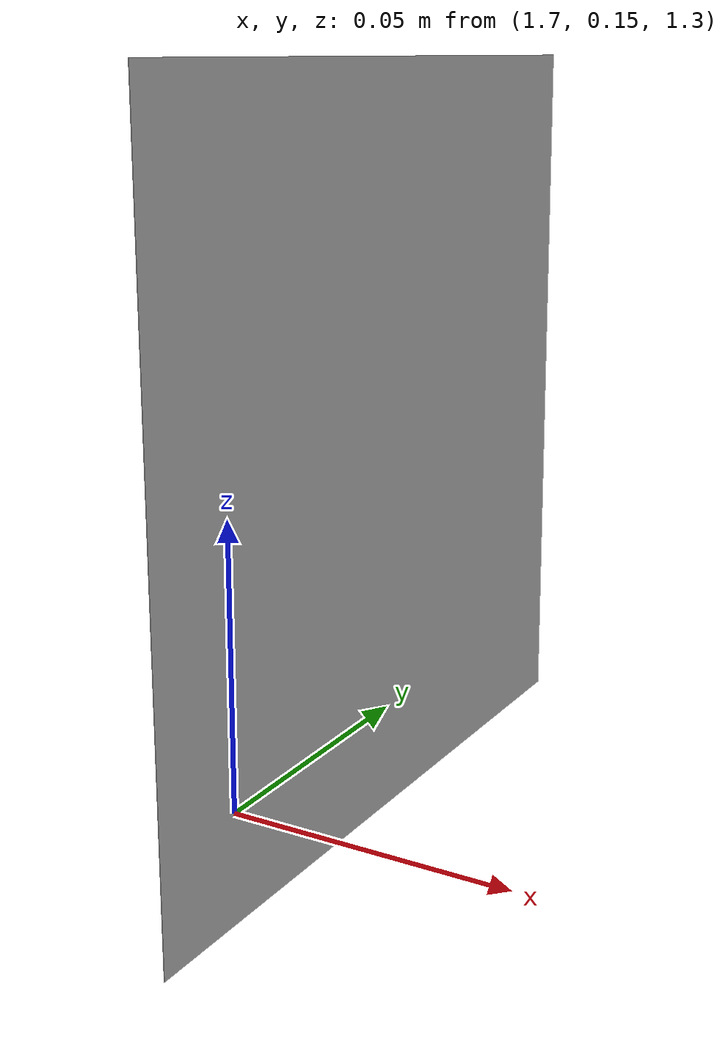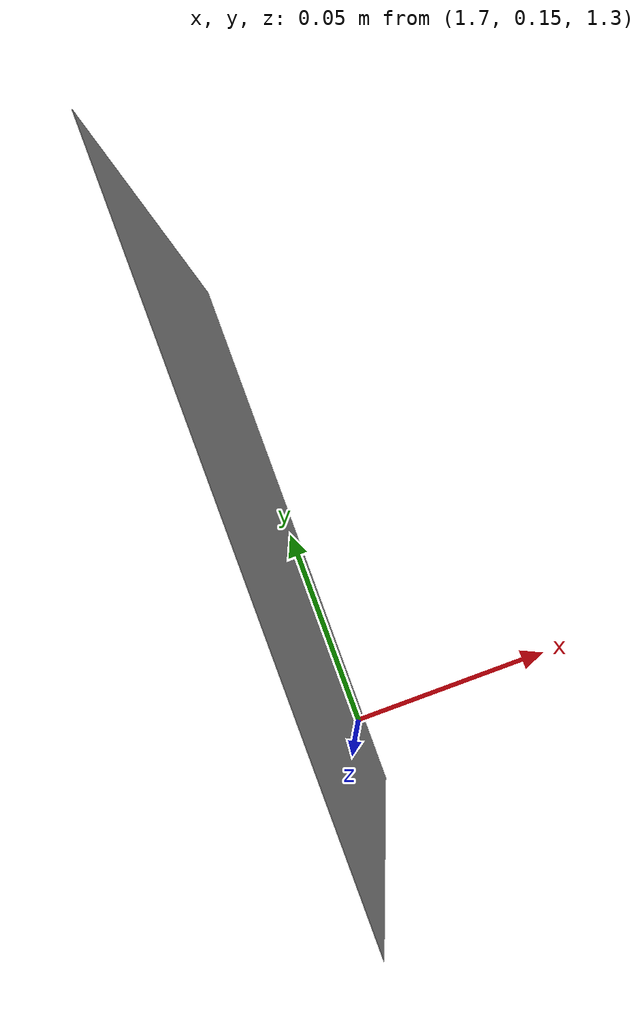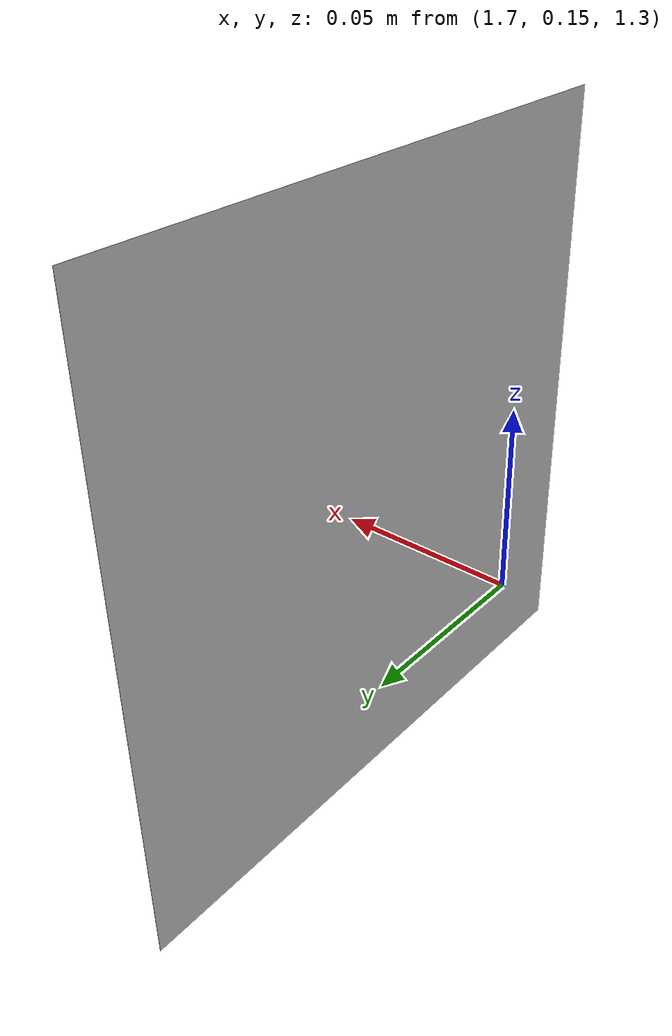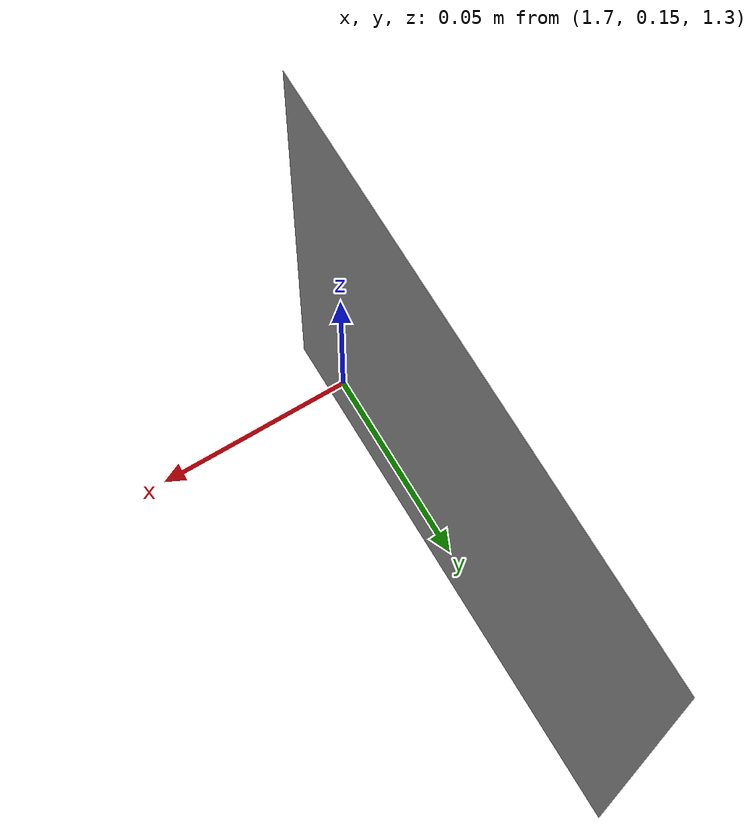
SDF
<?xml version="1.0" ?>
<sdf version="1.5">
  <world name="default">
    <!-- A global light source 123-->
    <include>
      <uri>model://sun</uri>
    </include>
    <!-- A ground plane -->
    <include>
      <uri>model://ground_plane</uri>
    </include>
    <include>
      <uri>model://aruco_marker_107</uri>
      <pose>1.7 0.2 1.35 0 0 0</pose>
    </include>

    <physics name='default_physics' default='0' type='ode'>
      <gravity>0 0 -9.8066</gravity>
      <ode>
        <solver>
          <type>quick</type>
          <iters>10</iters>
          <sor>1.3</sor>
          <use_dynamic_moi_rescaling>0</use_dynamic_moi_rescaling>
        </solver>
        <constraints>
          <cfm>0</cfm>
          <erp>0.2</erp>
          <contact_max_correcting_vel>100</contact_max_correcting_vel>
          <contact_surface_layer>0.001</contact_surface_layer>
        </constraints>
      </ode>
      <max_step_size>0.004</max_step_size>
      <real_time_factor>1</real_time_factor>
      <real_time_update_rate>250</real_time_update_rate>
      <magnetic_field>6.0e-6 2.3e-5 -4.2e-5</magnetic_field>
    </physics>
  </world>
</sdf>

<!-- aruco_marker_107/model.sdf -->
<sdf version="1.6">
  <model name="aruco_marker_107">
    <static>true</static>
      <link name="link">
        <inertial>
          <pose>0 0 0 0 0 0</pose>
          <mass>0.001</mass>
          <inertia>
            <ixx>3.7499999999999997e-06</ixx>
            <ixy>0.0</ixy>
            <ixz>0.0</ixz>
            <iyy>1.8750008333333333e-06</iyy>
            <iyz>0.0</iyz>
            <izz>1.8750008333333333e-06</izz>
          </inertia>
        </inertial>
        <visual name="front_visual">
          <pose>0.00005 0 0 0 0 0</pose>
          <geometry>
            <box>
              <size>0.0001 0.14 0.14</size>
            </box>
          </geometry>
          <material>
            <script>
              <uri>model://aruco_marker_107/materials/scripts</uri>
              <uri>model://aruco_marker_107/materials/textures</uri>
              <name>Marker107</name>
            </script>
          </material>
        </visual>
        <!-- Hide the marker from the back -->
        <collision name="collision">
          <pose>0 0 0 0 0 0</pose>
          <geometry>
            <box>
              <size>0.0001 0.14 0.14</size>
            </box>
          </geometry>
        </collision>
      </link>
  </model>
</sdf>
